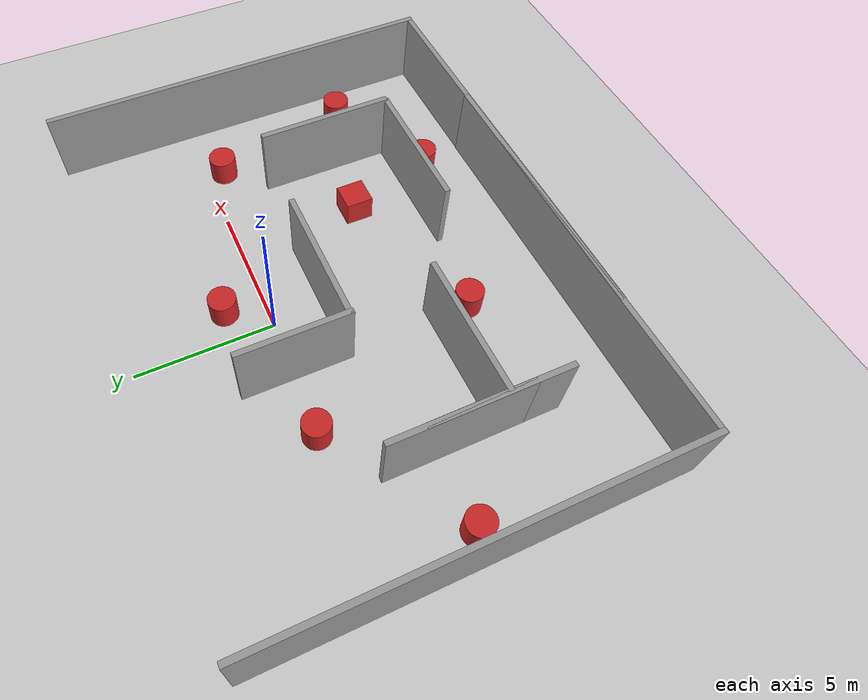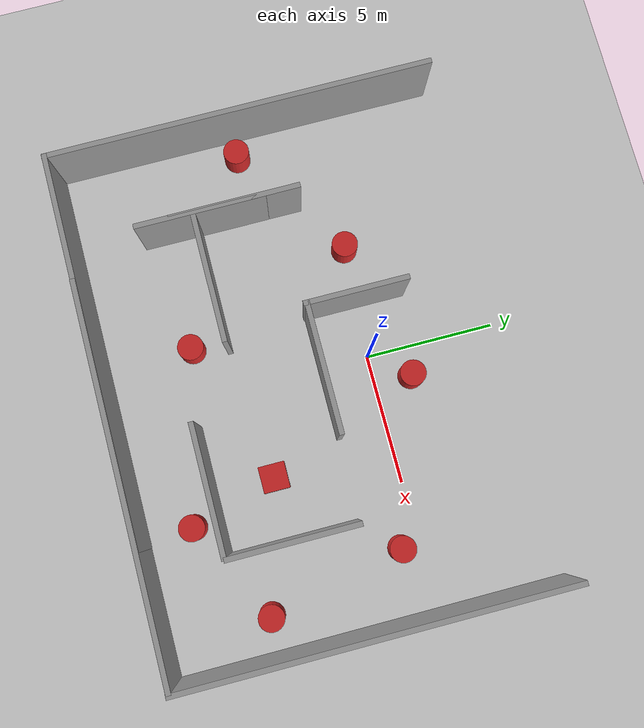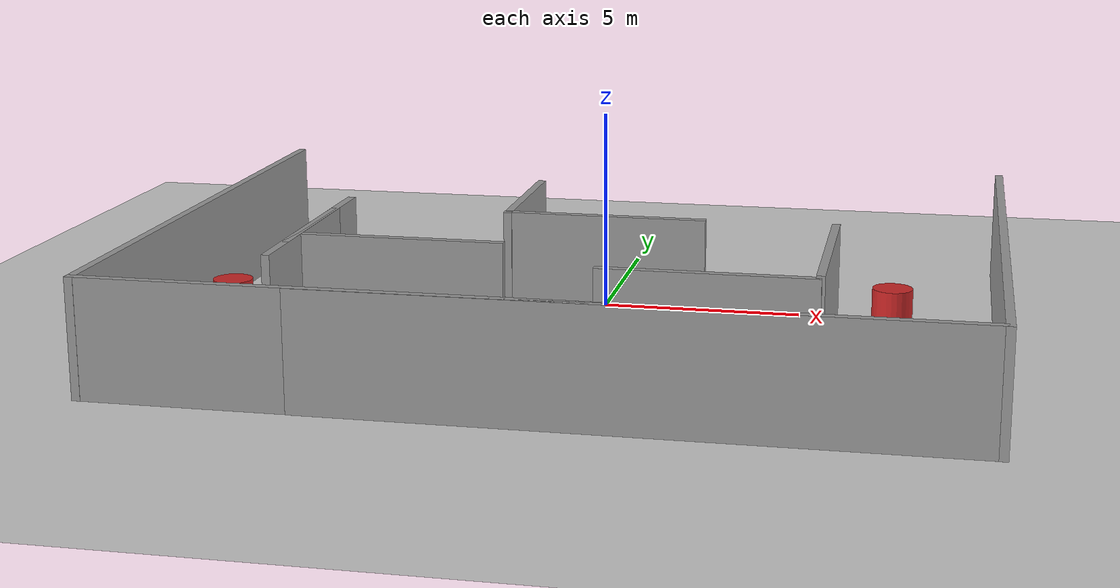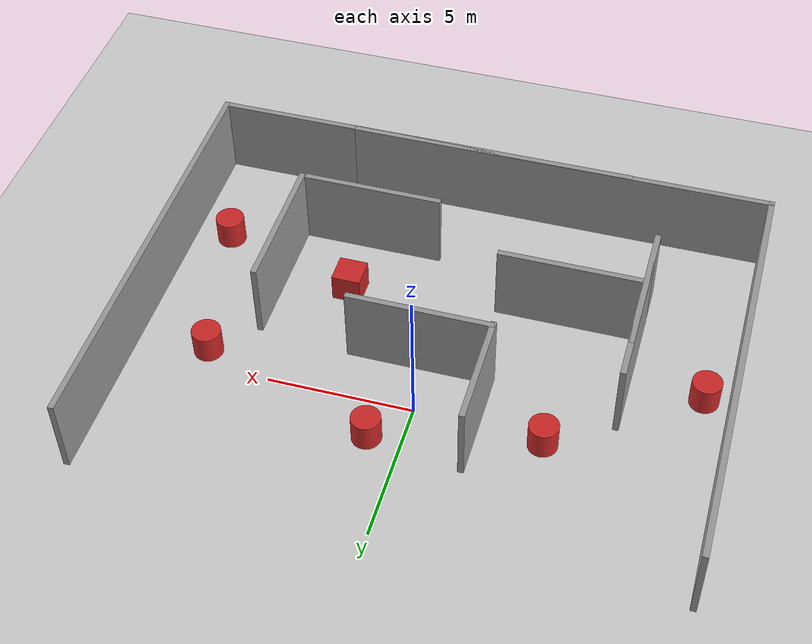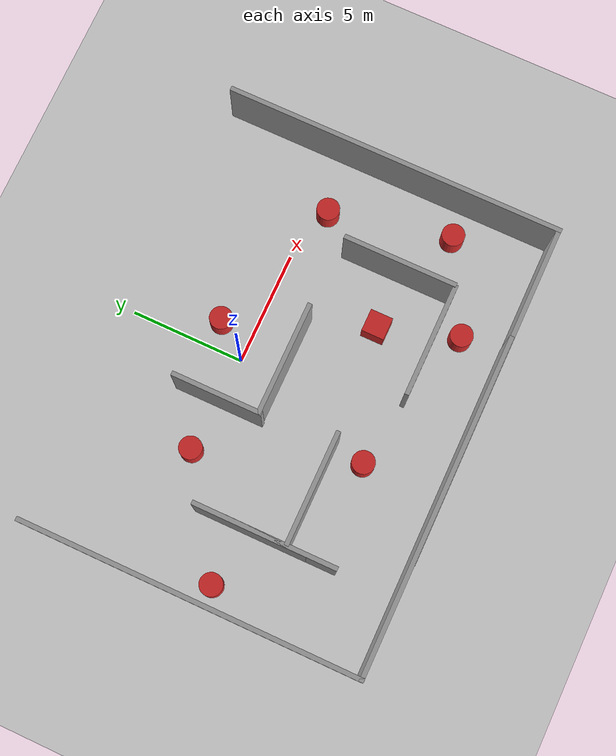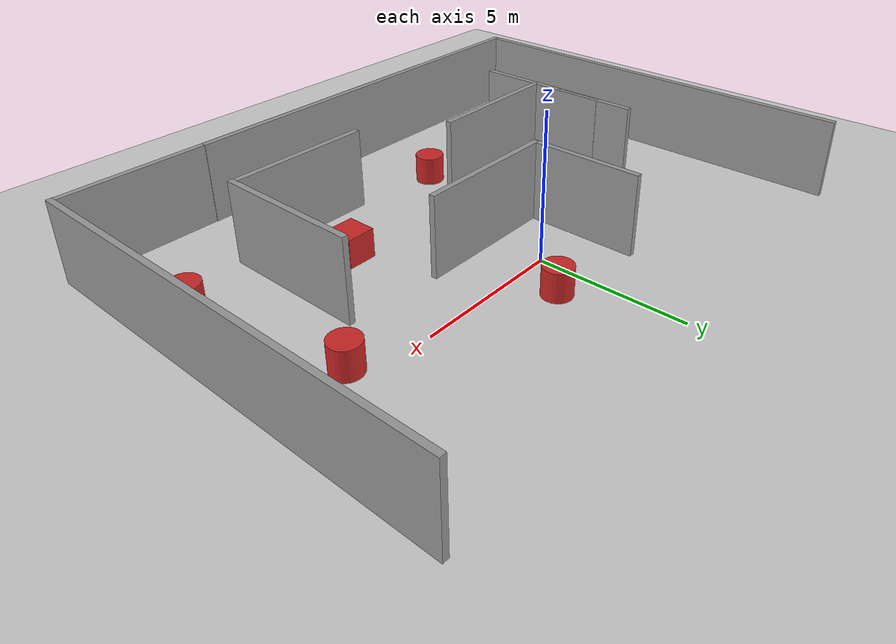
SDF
<sdf version="1.7">
 <world name="default">
  <model name="ground_plane">
   <static>1</static>
   <link name="link">
    <collision name="collision">
     <geometry><plane><normal>0 0 1</normal><size>100 100</size></plane></geometry>
     <surface>
      <contact><collide_bitmask>65535</collide_bitmask></contact>
      <friction><ode><mu>100</mu><mu2>50</mu2></ode></friction>
     </surface>
    </collision>
    <visual name="visual">
     <cast_shadows>0</cast_shadows>
     <geometry><plane><normal>0 0 1</normal><size>100 100</size></plane></geometry>
     <material>
      <script><uri>file://media/materials/scripts/gazebo.material</uri><name>Gazebo/Grey</name></script>
     </material>
    </visual>
   </link>
  </model>
  <model name="grey_wall_4_clone_0_clone_clone_0_clone_clone_clone_0_clone">
   <link name="link">
    <pose>0 0 1.4 0 -0 0</pose>
    <inertial>
     <mass>1</mass>
     <inertia><ixx>1</ixx><ixy>0</ixy><ixz>0</ixz><iyy>1</iyy><iyz>0</iyz><izz>1</izz></inertia>
    </inertial>
    <visual name="visual">
     <cast_shadows>0</cast_shadows>
     <geometry><box><size>4 0.2 2.8</size></box></geometry>
     <material>
      <script>
       <uri>model://grey_wall/materials/scripts</uri>
       <uri>model://grey_wall/materials/textures</uri>
       <name>vrc/grey_wall</name>
      </script>
      <shader type="pixel"><normal_map>__default__</normal_map></shader>
      <ambient>1 1 1 1</ambient>
      <diffuse>1 1 1 1</diffuse>
      <specular>0 0 0 1</specular>
      <emissive>0 0 0 1</emissive>
     </material>
    </visual>
    <collision name="collision">
     <geometry><box><size>4 0.2 2.8</size></box></geometry>
     <surface>
      <friction>
       <ode><mu>1</mu><mu2>1</mu2><fdir1>0 0 0</fdir1><slip1>0</slip1><slip2>0</slip2></ode>
       <torsional>
        <coefficient>1</coefficient>
        <patch_radius>0</patch_radius>
        <surface_radius>0</surface_radius>
        <use_patch_radius>1</use_patch_radius>
        <ode><slip>0</slip></ode>
       </torsional>
      </friction>
      <bounce><restitution_coefficient>0</restitution_coefficient><threshold>1e+06</threshold></bounce>
      <contact>
       <collide_without_contact>0</collide_without_contact>
       <collide_without_contact_bitmask>1</collide_without_contact_bitmask>
       <collide_bitmask>1</collide_bitmask>
       <ode>
        <soft_cfm>0</soft_cfm>
        <soft_erp>0.2</soft_erp>
        <kp>1e+13</kp>
        <kd>1</kd>
        <max_vel>0.01</max_vel>
        <min_depth>0</min_depth>
       </ode>
       <bullet>
        <split_impulse>1</split_impulse>
        <split_impulse_penetration_threshold>-0.01</split_impulse_penetration_threshold>
        <soft_cfm>0</soft_cfm>
        <soft_erp>0.2</soft_erp>
        <kp>1e+13</kp>
        <kd>1</kd>
       </bullet>
      </contact>
     </surface>
    </collision>
   </link>
   <static>1</static>
   <pose>-2.10783 -0.018559 0 0 -0 1.57141</pose>
  </model>
  <model name="grey_wall_15_clone_0_clone_clone_clone_clone">
   <link name="link">
    <pose>0 0 1.4 0 -0 0</pose>
    <inertial>
     <mass>1</mass>
     <inertia><ixx>1</ixx><ixy>0</ixy><ixz>0</ixz><iyy>1</iyy><iyz>0</iyz><izz>1</izz></inertia>
    </inertial>
    <visual name="visual">
     <cast_shadows>0</cast_shadows>
     <geometry><box><size>15 0.2 2.8</size></box></geometry>
     <material>
      <script>
       <uri>model://grey_wall/materials/scripts</uri>
       <uri>model://grey_wall/materials/textures</uri>
       <name>vrc/grey_wall</name>
      </script>
      <shader type="pixel"><normal_map>__default__</normal_map></shader>
      <ambient>1 1 1 1</ambient>
      <diffuse>1 1 1 1</diffuse>
      <specular>0 0 0 1</specular>
      <emissive>0 0 0 1</emissive>
     </material>
    </visual>
    <collision name="collision">
     <geometry><box><size>15 0.2 2.8</size></box></geometry>
     <surface>
      <friction>
       <ode><mu>1</mu><mu2>1</mu2><fdir1>0 0 0</fdir1><slip1>0</slip1><slip2>0</slip2></ode>
       <torsional>
        <coefficient>1</coefficient>
        <patch_radius>0</patch_radius>
        <surface_radius>0</surface_radius>
        <use_patch_radius>1</use_patch_radius>
        <ode><slip>0</slip></ode>
       </torsional>
      </friction>
      <bounce><restitution_coefficient>0</restitution_coefficient><threshold>1e+06</threshold></bounce>
      <contact>
       <collide_without_contact>0</collide_without_contact>
       <collide_without_contact_bitmask>1</collide_without_contact_bitmask>
       <collide_bitmask>1</collide_bitmask>
       <ode>
        <soft_cfm>0</soft_cfm>
        <soft_erp>0.2</soft_erp>
        <kp>1e+13</kp>
        <kd>1</kd>
        <max_vel>0.01</max_vel>
        <min_depth>0</min_depth>
       </ode>
       <bullet>
        <split_impulse>1</split_impulse>
        <split_impulse_penetration_threshold>-0.01</split_impulse_penetration_threshold>
        <soft_cfm>0</soft_cfm>
        <soft_erp>0.2</soft_erp>
        <kp>1e+13</kp>
        <kd>1</kd>
       </bullet>
      </contact>
     </surface>
    </collision>
   </link>
   <static>1</static>
   <pose>-2.50634 -9.87694 0 0 -0 0.001488</pose>
  </model>
  <model name="grey_wall_15_clone_0_clone_clone_clone_clone_0">
   <link name="link">
    <pose>0 0 1.4 0 -0 0</pose>
    <inertial>
     <mass>1</mass>
     <inertia><ixx>1</ixx><ixy>0</ixy><ixz>0</ixz><iyy>1</iyy><iyz>0</iyz><izz>1</izz></inertia>
    </inertial>
    <visual name="visual">
     <cast_shadows>0</cast_shadows>
     <geometry><box><size>15 0.2 2.8</size></box></geometry>
     <material>
      <script>
       <uri>model://grey_wall/materials/scripts</uri>
       <uri>model://grey_wall/materials/textures</uri>
       <name>vrc/grey_wall</name>
      </script>
      <shader type="pixel"><normal_map>__default__</normal_map></shader>
      <ambient>1 1 1 1</ambient>
      <diffuse>1 1 1 1</diffuse>
      <specular>0 0 0 1</specular>
      <emissive>0 0 0 1</emissive>
     </material>
    </visual>
    <collision name="collision">
     <geometry><box><size>15 0.2 2.8</size></box></geometry>
     <surface>
      <friction>
       <ode><mu>1</mu><mu2>1</mu2><fdir1>0 0 0</fdir1><slip1>0</slip1><slip2>0</slip2></ode>
       <torsional>
        <coefficient>1</coefficient>
        <patch_radius>0</patch_radius>
        <surface_radius>0</surface_radius>
        <use_patch_radius>1</use_patch_radius>
        <ode><slip>0</slip></ode>
       </torsional>
      </friction>
      <bounce><restitution_coefficient>0</restitution_coefficient><threshold>1e+06</threshold></bounce>
      <contact>
       <collide_without_contact>0</collide_without_contact>
       <collide_without_contact_bitmask>1</collide_without_contact_bitmask>
       <collide_bitmask>1</collide_bitmask>
       <ode>
        <soft_cfm>0</soft_cfm>
        <soft_erp>0.2</soft_erp>
        <kp>1e+13</kp>
        <kd>1</kd>
        <max_vel>0.01</max_vel>
        <min_depth>0</min_depth>
       </ode>
       <bullet>
        <split_impulse>1</split_impulse>
        <split_impulse_penetration_threshold>-0.01</split_impulse_penetration_threshold>
        <soft_cfm>0</soft_cfm>
        <soft_erp>0.2</soft_erp>
        <kp>1e+13</kp>
        <kd>1</kd>
       </bullet>
      </contact>
     </surface>
    </collision>
   </link>
   <static>1</static>
   <pose>2.39267 -9.88656 0 0 -0 0.001488</pose>
  </model>
  <model name="grey_wall_15_clone_0_clone_2_clone">
   <link name="link">
    <pose>0 0 1.4 0 -0 0</pose>
    <inertial>
     <mass>1</mass>
     <inertia><ixx>1</ixx><ixy>0</ixy><ixz>0</ixz><iyy>1</iyy><iyz>0</iyz><izz>1</izz></inertia>
    </inertial>
    <visual name="visual">
     <cast_shadows>0</cast_shadows>
     <geometry><box><size>15 0.2 2.8</size></box></geometry>
     <material>
      <script>
       <uri>model://grey_wall/materials/scripts</uri>
       <uri>model://grey_wall/materials/textures</uri>
       <name>vrc/grey_wall</name>
      </script>
      <shader type="pixel"><normal_map>__default__</normal_map></shader>
      <ambient>1 1 1 1</ambient>
      <diffuse>1 1 1 1</diffuse>
      <specular>0 0 0 1</specular>
      <emissive>0 0 0 1</emissive>
     </material>
    </visual>
    <collision name="collision">
     <geometry><box><size>15 0.2 2.8</size></box></geometry>
     <surface>
      <friction>
       <ode><mu>1</mu><mu2>1</mu2><fdir1>0 0 0</fdir1><slip1>0</slip1><slip2>0</slip2></ode>
       <torsional>
        <coefficient>1</coefficient>
        <patch_radius>0</patch_radius>
        <surface_radius>0</surface_radius>
        <use_patch_radius>1</use_patch_radius>
        <ode><slip>0</slip></ode>
       </torsional>
      </friction>
      <bounce><restitution_coefficient>0</restitution_coefficient><threshold>1e+06</threshold></bounce>
      <contact>
       <collide_without_contact>0</collide_without_contact>
       <collide_without_contact_bitmask>1</collide_without_contact_bitmask>
       <collide_bitmask>1</collide_bitmask>
       <ode>
        <soft_cfm>0</soft_cfm>
        <soft_erp>0.2</soft_erp>
        <kp>1e+13</kp>
        <kd>1</kd>
        <max_vel>0.01</max_vel>
        <min_depth>0</min_depth>
       </ode>
       <bullet>
        <split_impulse>1</split_impulse>
        <split_impulse_penetration_threshold>-0.01</split_impulse_penetration_threshold>
        <soft_cfm>0</soft_cfm>
        <soft_erp>0.2</soft_erp>
        <kp>1e+13</kp>
        <kd>1</kd>
       </bullet>
      </contact>
     </surface>
    </collision>
   </link>
   <static>1</static>
   <pose>9.9147 -2.48575 0 0 -0 1.57141</pose>
  </model>
  <model name="grey_wall_15_clone_0_clone_2_clone_0_clone_0">
   <link name="link">
    <pose>0 0 1.4 0 -0 0</pose>
    <inertial>
     <mass>1</mass>
     <inertia><ixx>1</ixx><ixy>0</ixy><ixz>0</ixz><iyy>1</iyy><iyz>0</iyz><izz>1</izz></inertia>
    </inertial>
    <visual name="visual">
     <cast_shadows>0</cast_shadows>
     <geometry><box><size>15 0.2 2.8</size></box></geometry>
     <material>
      <script>
       <uri>model://grey_wall/materials/scripts</uri>
       <uri>model://grey_wall/materials/textures</uri>
       <name>vrc/grey_wall</name>
      </script>
      <shader type="pixel"><normal_map>__default__</normal_map></shader>
      <ambient>1 1 1 1</ambient>
      <diffuse>1 1 1 1</diffuse>
      <specular>0 0 0 1</specular>
      <emissive>0 0 0 1</emissive>
     </material>
    </visual>
    <collision name="collision">
     <geometry><box><size>15 0.2 2.8</size></box></geometry>
     <surface>
      <friction>
       <ode><mu>1</mu><mu2>1</mu2><fdir1>0 0 0</fdir1><slip1>0</slip1><slip2>0</slip2></ode>
       <torsional>
        <coefficient>1</coefficient>
        <patch_radius>0</patch_radius>
        <surface_radius>0</surface_radius>
        <use_patch_radius>1</use_patch_radius>
        <ode><slip>0</slip></ode>
       </torsional>
      </friction>
      <bounce><restitution_coefficient>0</restitution_coefficient><threshold>1e+06</threshold></bounce>
      <contact>
       <collide_without_contact>0</collide_without_contact>
       <collide_without_contact_bitmask>1</collide_without_contact_bitmask>
       <collide_bitmask>1</collide_bitmask>
       <ode>
        <soft_cfm>0</soft_cfm>
        <soft_erp>0.2</soft_erp>
        <kp>1e+13</kp>
        <kd>1</kd>
        <max_vel>0.01</max_vel>
        <min_depth>0</min_depth>
       </ode>
       <bullet>
        <split_impulse>1</split_impulse>
        <split_impulse_penetration_threshold>-0.01</split_impulse_penetration_threshold>
        <soft_cfm>0</soft_cfm>
        <soft_erp>0.2</soft_erp>
        <kp>1e+13</kp>
        <kd>1</kd>
       </bullet>
      </contact>
     </surface>
    </collision>
   </link>
   <static>1</static>
   <pose>-9.91908 -2.49177 0 0 -0 1.57141</pose>
  </model>
  <model name="grey_wall_5_clone_2_clone">
   <link name="link">
    <pose>0 0 1.4 0 -0 0</pose>
    <inertial>
     <mass>1</mass>
     <inertia><ixx>1</ixx><ixy>0</ixy><ixz>0</ixz><iyy>1</iyy><iyz>0</iyz><izz>1</izz></inertia>
    </inertial>
    <visual name="visual">
     <cast_shadows>0</cast_shadows>
     <geometry><box><size>5 0.2 2.8</size></box></geometry>
     <material>
      <script>
       <uri>model://grey_wall/materials/scripts</uri>
       <uri>model://grey_wall/materials/textures</uri>
       <name>vrc/grey_wall</name>
      </script>
      <shader type="pixel"><normal_map>__default__</normal_map></shader>
      <ambient>1 1 1 1</ambient>
      <diffuse>1 1 1 1</diffuse>
      <specular>0 0 0 1</specular>
      <emissive>0 0 0 1</emissive>
     </material>
    </visual>
    <collision name="collision">
     <geometry><box><size>5 0.2 2.8</size></box></geometry>
     <surface>
      <friction>
       <ode><mu>1</mu><mu2>1</mu2><fdir1>0 0 0</fdir1><slip1>0</slip1><slip2>0</slip2></ode>
       <torsional>
        <coefficient>1</coefficient>
        <patch_radius>0</patch_radius>
        <surface_radius>0</surface_radius>
        <use_patch_radius>1</use_patch_radius>
        <ode><slip>0</slip></ode>
       </torsional>
      </friction>
      <bounce><restitution_coefficient>0</restitution_coefficient><threshold>1e+06</threshold></bounce>
      <contact>
       <collide_without_contact>0</collide_without_contact>
       <collide_without_contact_bitmask>1</collide_without_contact_bitmask>
       <collide_bitmask>1</collide_bitmask>
       <ode>
        <soft_cfm>0</soft_cfm>
        <soft_erp>0.2</soft_erp>
        <kp>1e+13</kp>
        <kd>1</kd>
        <max_vel>0.01</max_vel>
        <min_depth>0</min_depth>
       </ode>
       <bullet>
        <split_impulse>1</split_impulse>
        <split_impulse_penetration_threshold>-0.01</split_impulse_penetration_threshold>
        <soft_cfm>0</soft_cfm>
        <soft_erp>0.2</soft_erp>
        <kp>1e+13</kp>
        <kd>1</kd>
       </bullet>
      </contact>
     </surface>
    </collision>
   </link>
   <static>1</static>
   <pose>0.32589 -1.8798 0 0 0 -0.000612</pose>
  </model>
  <model name="grey_wall_5_clone_2_clone_clone_clone_clone_0_clone_2">
   <link name="link">
    <pose>0 0 1.4 0 -0 0</pose>
    <inertial>
     <mass>1</mass>
     <inertia><ixx>1</ixx><ixy>0</ixy><ixz>0</ixz><iyy>1</iyy><iyz>0</iyz><izz>1</izz></inertia>
    </inertial>
    <visual name="visual">
     <cast_shadows>0</cast_shadows>
     <geometry><box><size>5 0.2 2.8</size></box></geometry>
     <material>
      <script>
       <uri>model://grey_wall/materials/scripts</uri>
       <uri>model://grey_wall/materials/textures</uri>
       <name>vrc/grey_wall</name>
      </script>
      <shader type="pixel"><normal_map>__default__</normal_map></shader>
      <ambient>1 1 1 1</ambient>
      <diffuse>1 1 1 1</diffuse>
      <specular>0 0 0 1</specular>
      <emissive>0 0 0 1</emissive>
     </material>
    </visual>
    <collision name="collision">
     <geometry><box><size>5 0.2 2.8</size></box></geometry>
     <surface>
      <friction>
       <ode><mu>1</mu><mu2>1</mu2><fdir1>0 0 0</fdir1><slip1>0</slip1><slip2>0</slip2></ode>
       <torsional>
        <coefficient>1</coefficient>
        <patch_radius>0</patch_radius>
        <surface_radius>0</surface_radius>
        <use_patch_radius>1</use_patch_radius>
        <ode><slip>0</slip></ode>
       </torsional>
      </friction>
      <bounce><restitution_coefficient>0</restitution_coefficient><threshold>1e+06</threshold></bounce>
      <contact>
       <collide_without_contact>0</collide_without_contact>
       <collide_without_contact_bitmask>1</collide_without_contact_bitmask>
       <collide_bitmask>1</collide_bitmask>
       <ode>
        <soft_cfm>0</soft_cfm>
        <soft_erp>0.2</soft_erp>
        <kp>1e+13</kp>
        <kd>1</kd>
        <max_vel>0.01</max_vel>
        <min_depth>0</min_depth>
       </ode>
       <bullet>
        <split_impulse>1</split_impulse>
        <split_impulse_penetration_threshold>-0.01</split_impulse_penetration_threshold>
        <soft_cfm>0</soft_cfm>
        <soft_erp>0.2</soft_erp>
        <kp>1e+13</kp>
        <kd>1</kd>
       </bullet>
      </contact>
     </surface>
    </collision>
   </link>
   <static>1</static>
   <pose>3.51988 -6.95953 0 0 0 -0.000612</pose>
  </model>
  <model name="grey_wall_5_clone_clone_0_clone_1_clone_0_clone_clone">
   <link name="link">
    <pose>0 0 1.4 0 -0 0</pose>
    <inertial>
     <mass>1</mass>
     <inertia><ixx>1</ixx><ixy>0</ixy><ixz>0</ixz><iyy>1</iyy><iyz>0</iyz><izz>1</izz></inertia>
    </inertial>
    <visual name="visual">
     <cast_shadows>0</cast_shadows>
     <geometry><box><size>5 0.2 2.8</size></box></geometry>
     <material>
      <script>
       <uri>model://grey_wall/materials/scripts</uri>
       <uri>model://grey_wall/materials/textures</uri>
       <name>vrc/grey_wall</name>
      </script>
      <shader type="pixel"><normal_map>__default__</normal_map></shader>
      <ambient>1 1 1 1</ambient>
      <diffuse>1 1 1 1</diffuse>
      <specular>0 0 0 1</specular>
      <emissive>0 0 0 1</emissive>
     </material>
    </visual>
    <collision name="collision">
     <geometry><box><size>5 0.2 2.8</size></box></geometry>
     <surface>
      <friction>
       <ode><mu>1</mu><mu2>1</mu2><fdir1>0 0 0</fdir1><slip1>0</slip1><slip2>0</slip2></ode>
       <torsional>
        <coefficient>1</coefficient>
        <patch_radius>0</patch_radius>
        <surface_radius>0</surface_radius>
        <use_patch_radius>1</use_patch_radius>
        <ode><slip>0</slip></ode>
       </torsional>
      </friction>
      <bounce><restitution_coefficient>0</restitution_coefficient><threshold>1e+06</threshold></bounce>
      <contact>
       <collide_without_contact>0</collide_without_contact>
       <collide_without_contact_bitmask>1</collide_without_contact_bitmask>
       <collide_bitmask>1</collide_bitmask>
       <ode>
        <soft_cfm>0</soft_cfm>
        <soft_erp>0.2</soft_erp>
        <kp>1e+13</kp>
        <kd>1</kd>
        <max_vel>0.01</max_vel>
        <min_depth>0</min_depth>
       </ode>
       <bullet>
        <split_impulse>1</split_impulse>
        <split_impulse_penetration_threshold>-0.01</split_impulse_penetration_threshold>
        <soft_cfm>0</soft_cfm>
        <soft_erp>0.2</soft_erp>
        <kp>1e+13</kp>
        <kd>1</kd>
       </bullet>
      </contact>
     </surface>
    </collision>
   </link>
   <static>1</static>
   <pose>5.99099 -4.47829 0.05569 0 -0 1.57141</pose>
  </model>
  <model name="grey_wall_5_clone_2_clone_clone_clone_clone_0_clone_1_clone">
   <link name="link">
    <pose>0 0 1.4 0 -0 0</pose>
    <inertial>
     <mass>1</mass>
     <inertia><ixx>1</ixx><ixy>0</ixy><ixz>0</ixz><iyy>1</iyy><iyz>0</iyz><izz>1</izz></inertia>
    </inertial>
    <visual name="visual">
     <cast_shadows>0</cast_shadows>
     <geometry><box><size>5 0.2 2.8</size></box></geometry>
     <material>
      <script>
       <uri>model://grey_wall/materials/scripts</uri>
       <uri>model://grey_wall/materials/textures</uri>
       <name>vrc/grey_wall</name>
      </script>
      <shader type="pixel"><normal_map>__default__</normal_map></shader>
      <ambient>1 1 1 1</ambient>
      <diffuse>1 1 1 1</diffuse>
      <specular>0 0 0 1</specular>
      <emissive>0 0 0 1</emissive>
     </material>
    </visual>
    <collision name="collision">
     <geometry><box><size>5 0.2 2.8</size></box></geometry>
     <surface>
      <friction>
       <ode><mu>1</mu><mu2>1</mu2><fdir1>0 0 0</fdir1><slip1>0</slip1><slip2>0</slip2></ode>
       <torsional>
        <coefficient>1</coefficient>
        <patch_radius>0</patch_radius>
        <surface_radius>0</surface_radius>
        <use_patch_radius>1</use_patch_radius>
        <ode><slip>0</slip></ode>
       </torsional>
      </friction>
      <bounce><restitution_coefficient>0</restitution_coefficient><threshold>1e+06</threshold></bounce>
      <contact>
       <collide_without_contact>0</collide_without_contact>
       <collide_without_contact_bitmask>1</collide_without_contact_bitmask>
       <collide_bitmask>1</collide_bitmask>
       <ode>
        <soft_cfm>0</soft_cfm>
        <soft_erp>0.2</soft_erp>
        <kp>1e+13</kp>
        <kd>1</kd>
        <max_vel>0.01</max_vel>
        <min_depth>0</min_depth>
       </ode>
       <bullet>
        <split_impulse>1</split_impulse>
        <split_impulse_penetration_threshold>-0.01</split_impulse_penetration_threshold>
        <soft_cfm>0</soft_cfm>
        <soft_erp>0.2</soft_erp>
        <kp>1e+13</kp>
        <kd>1</kd>
       </bullet>
      </contact>
     </surface>
    </collision>
   </link>
   <static>1</static>
   <pose>-3.96034 -5.09216 0 0 0 -0.000612</pose>
  </model>
  <model name="grey_wall_5_clone_clone_0_clone_1_clone_0_clone_clone_clone">
   <link name="link">
    <pose>0 0 1.4 0 -0 0</pose>
    <inertial>
     <mass>1</mass>
     <inertia><ixx>1</ixx><ixy>0</ixy><ixz>0</ixz><iyy>1</iyy><iyz>0</iyz><izz>1</izz></inertia>
    </inertial>
    <visual name="visual">
     <cast_shadows>0</cast_shadows>
     <geometry><box><size>5 0.2 2.8</size></box></geometry>
     <material>
      <script>
       <uri>model://grey_wall/materials/scripts</uri>
       <uri>model://grey_wall/materials/textures</uri>
       <name>vrc/grey_wall</name>
      </script>
      <shader type="pixel"><normal_map>__default__</normal_map></shader>
      <ambient>1 1 1 1</ambient>
      <diffuse>1 1 1 1</diffuse>
      <specular>0 0 0 1</specular>
      <emissive>0 0 0 1</emissive>
     </material>
    </visual>
    <collision name="collision">
     <geometry><box><size>5 0.2 2.8</size></box></geometry>
     <surface>
      <friction>
       <ode><mu>1</mu><mu2>1</mu2><fdir1>0 0 0</fdir1><slip1>0</slip1><slip2>0</slip2></ode>
       <torsional>
        <coefficient>1</coefficient>
        <patch_radius>0</patch_radius>
        <surface_radius>0</surface_radius>
        <use_patch_radius>1</use_patch_radius>
        <ode><slip>0</slip></ode>
       </torsional>
      </friction>
      <bounce><restitution_coefficient>0</restitution_coefficient><threshold>1e+06</threshold></bounce>
      <contact>
       <collide_without_contact>0</collide_without_contact>
       <collide_without_contact_bitmask>1</collide_without_contact_bitmask>
       <collide_bitmask>1</collide_bitmask>
       <ode>
        <soft_cfm>0</soft_cfm>
        <soft_erp>0.2</soft_erp>
        <kp>1e+13</kp>
        <kd>1</kd>
        <max_vel>0.01</max_vel>
        <min_depth>0</min_depth>
       </ode>
       <bullet>
        <split_impulse>1</split_impulse>
        <split_impulse_penetration_threshold>-0.01</split_impulse_penetration_threshold>
        <soft_cfm>0</soft_cfm>
        <soft_erp>0.2</soft_erp>
        <kp>1e+13</kp>
        <kd>1</kd>
       </bullet>
      </contact>
     </surface>
    </collision>
   </link>
   <static>1</static>
   <pose>-6.4574 -3.49352 0 0 -0 1.57141</pose>
  </model>
  <model name="grey_wall_5_clone_clone_0_clone_1_clone_0_clone_clone_clone_0">
   <link name="link">
    <pose>0 0 1.4 0 -0 0</pose>
    <inertial>
     <mass>1</mass>
     <inertia><ixx>1</ixx><ixy>0</ixy><ixz>0</ixz><iyy>1</iyy><iyz>0</iyz><izz>1</izz></inertia>
    </inertial>
    <visual name="visual">
     <cast_shadows>0</cast_shadows>
     <geometry><box><size>5 0.2 2.8</size></box></geometry>
     <material>
      <script>
       <uri>model://grey_wall/materials/scripts</uri>
       <uri>model://grey_wall/materials/textures</uri>
       <name>vrc/grey_wall</name>
      </script>
      <shader type="pixel"><normal_map>__default__</normal_map></shader>
      <ambient>1 1 1 1</ambient>
      <diffuse>1 1 1 1</diffuse>
      <specular>0 0 0 1</specular>
      <emissive>0 0 0 1</emissive>
     </material>
    </visual>
    <collision name="collision">
     <geometry><box><size>5 0.2 2.8</size></box></geometry>
     <surface>
      <friction>
       <ode><mu>1</mu><mu2>1</mu2><fdir1>0 0 0</fdir1><slip1>0</slip1><slip2>0</slip2></ode>
       <torsional>
        <coefficient>1</coefficient>
        <patch_radius>0</patch_radius>
        <surface_radius>0</surface_radius>
        <use_patch_radius>1</use_patch_radius>
        <ode><slip>0</slip></ode>
       </torsional>
      </friction>
      <bounce><restitution_coefficient>0</restitution_coefficient><threshold>1e+06</threshold></bounce>
      <contact>
       <collide_without_contact>0</collide_without_contact>
       <collide_without_contact_bitmask>1</collide_without_contact_bitmask>
       <collide_bitmask>1</collide_bitmask>
       <ode>
        <soft_cfm>0</soft_cfm>
        <soft_erp>0.2</soft_erp>
        <kp>1e+13</kp>
        <kd>1</kd>
        <max_vel>0.01</max_vel>
        <min_depth>0</min_depth>
       </ode>
       <bullet>
        <split_impulse>1</split_impulse>
        <split_impulse_penetration_threshold>-0.01</split_impulse_penetration_threshold>
        <soft_cfm>0</soft_cfm>
        <soft_erp>0.2</soft_erp>
        <kp>1e+13</kp>
        <kd>1</kd>
       </bullet>
      </contact>
     </surface>
    </collision>
   </link>
   <static>1</static>
   <pose>-6.4524 -4.81306 0 0 -0 1.57141</pose>
  </model>
  <model name="unit_cylinder">
   <pose>7.34807 -0.688016 0.499993 -3e-06 2e-06 0</pose>
   <link name="link">
    <inertial>
     <mass>1</mass>
     <inertia><ixx>0.145833</ixx><ixy>0</ixy><ixz>0</ixz><iyy>0.145833</iyy><iyz>0</iyz><izz>0.125</izz></inertia>
    </inertial>
    <collision name="collision">
     <geometry><cylinder><radius>0.5</radius><length>1</length></cylinder></geometry>
    </collision>
    <visual name="visual">
     <geometry><cylinder><radius>0.5</radius><length>1</length></cylinder></geometry>
     <material>
      <script><name>Gazebo/Red</name><uri>file://media/materials/scripts/gazebo.material</uri></script>
     </material>
    </visual>
   </link>
  </model>
  <model name="unit_box">
   <pose>3.60884 -4.63058 0.499995 0 1e-05 0</pose>
   <link name="link">
    <inertial>
     <mass>1</mass>
     <inertia>
      <ixx>0.166667</ixx>
      <ixy>0</ixy>
      <ixz>0</ixz>
      <iyy>0.166667</iyy>
      <iyz>0</iyz>
      <izz>0.166667</izz>
     </inertia>
    </inertial>
    <collision name="collision"><geometry><box><size>1 1 1</size></box></geometry></collision>
    <visual name="visual">
     <geometry><box><size>1 1 1</size></box></geometry>
     <material>
      <script><name>Gazebo/Red</name><uri>file://media/materials/scripts/gazebo.material</uri></script>
     </material>
    </visual>
   </link>
  </model>
  <model name="unit_cylinder_2">
   <pose>1.14167 1.42506 0.499998 3e-06 -3e-06 0</pose>
   <link name="link">
    <inertial>
     <mass>1</mass>
     <inertia><ixx>0.145833</ixx><ixy>0</ixy><ixz>0</ixz><iyy>0.145833</iyy><iyz>0</iyz><izz>0.125</izz></inertia>
    </inertial>
    <collision name="collision">
     <geometry><cylinder><radius>0.5</radius><length>1</length></cylinder></geometry>
    </collision>
    <visual name="visual">
     <geometry><cylinder><radius>0.5</radius><length>1</length></cylinder></geometry>
     <material>
      <script><name>Gazebo/Red</name><uri>file://media/materials/scripts/gazebo.material</uri></script>
     </material>
    </visual>
   </link>
  </model>
  <model name="unit_cylinder_7">
   <pose>-4.34463 0.219704 0.499992 -3e-06 -4e-06 -0</pose>
   <link name="link">
    <inertial>
     <mass>1</mass>
     <inertia><ixx>0.145833</ixx><ixy>0</ixy><ixz>0</ixz><iyy>0.145833</iyy><iyz>0</iyz><izz>0.125</izz></inertia>
    </inertial>
    <collision name="collision">
     <geometry><cylinder><radius>0.5</radius><length>1</length></cylinder></geometry>
    </collision>
    <visual name="visual">
     <geometry><cylinder><radius>0.5</radius><length>1</length></cylinder></geometry>
     <material>
      <script><name>Gazebo/Red</name><uri>file://media/materials/scripts/gazebo.material</uri></script>
     </material>
    </visual>
   </link>
  </model>
  <model name="unit_cylinder_8">
   <pose>-9.01371 -2.93187 0.499993 -3e-06 -3e-06 0</pose>
   <link name="link">
    <inertial>
     <mass>1</mass>
     <inertia><ixx>0.145833</ixx><ixy>0</ixy><ixz>0</ixz><iyy>0.145833</iyy><iyz>0</iyz><izz>0.125</izz></inertia>
    </inertial>
    <collision name="collision">
     <geometry><cylinder><radius>0.5</radius><length>1</length></cylinder></geometry>
    </collision>
    <visual name="visual">
     <geometry><cylinder><radius>0.5</radius><length>1</length></cylinder></geometry>
     <material>
      <script><name>Gazebo/Red</name><uri>file://media/materials/scripts/gazebo.material</uri></script>
     </material>
    </visual>
   </link>
  </model>
  <model name="unit_cylinder_9">
   <pose>4.65001 -8.02428 0.499997 3e-06 4e-06 -0</pose>
   <link name="link">
    <inertial>
     <mass>1</mass>
     <inertia><ixx>0.145833</ixx><ixy>0</ixy><ixz>0</ixz><iyy>0.145833</iyy><iyz>0</iyz><izz>0.125</izz></inertia>
    </inertial>
    <collision name="collision">
     <geometry><cylinder><radius>0.5</radius><length>1</length></cylinder></geometry>
    </collision>
    <visual name="visual">
     <geometry><cylinder><radius>0.5</radius><length>1</length></cylinder></geometry>
     <material>
      <script><name>Gazebo/Red</name><uri>file://media/materials/scripts/gazebo.material</uri></script>
     </material>
    </visual>
   </link>
  </model>
  <model name="unit_cylinder_10">
   <pose>8.51496 -5.97626 0.499993 -3e-06 -4e-06 -0</pose>
   <link name="link">
    <inertial>
     <mass>1</mass>
     <inertia><ixx>0.145833</ixx><ixy>0</ixy><ixz>0</ixz><iyy>0.145833</iyy><iyz>0</iyz><izz>0.125</izz></inertia>
    </inertial>
    <collision name="collision">
     <geometry><cylinder><radius>0.5</radius><length>1</length></cylinder></geometry>
    </collision>
    <visual name="visual">
     <geometry><cylinder><radius>0.5</radius><length>1</length></cylinder></geometry>
     <material>
      <script><name>Gazebo/Red</name><uri>file://media/materials/scripts/gazebo.material</uri></script>
     </material>
    </visual>
   </link>
  </model>
  <model name="unit_cylinder_11">
   <pose>-1.93027 -6.4811 0.499997 3e-06 4e-06 -0</pose>
   <link name="link">
    <inertial>
     <mass>1</mass>
     <inertia><ixx>0.145833</ixx><ixy>0</ixy><ixz>0</ixz><iyy>0.145833</iyy><iyz>0</iyz><izz>0.125</izz></inertia>
    </inertial>
    <collision name="collision">
     <geometry><cylinder><radius>0.5</radius><length>1</length></cylinder></geometry>
    </collision>
    <visual name="visual">
     <geometry><cylinder><radius>0.5</radius><length>1</length></cylinder></geometry>
     <material>
      <script><name>Gazebo/Red</name><uri>file://media/materials/scripts/gazebo.material</uri></script>
     </material>
    </visual>
   </link>
  </model>
 </world>
</sdf>
